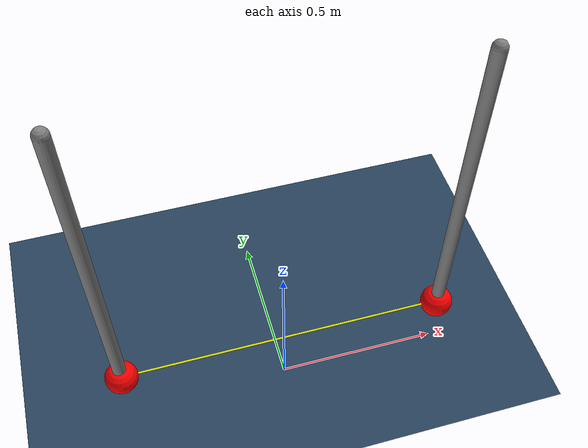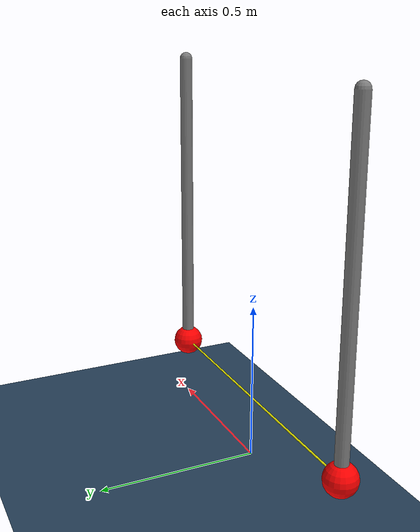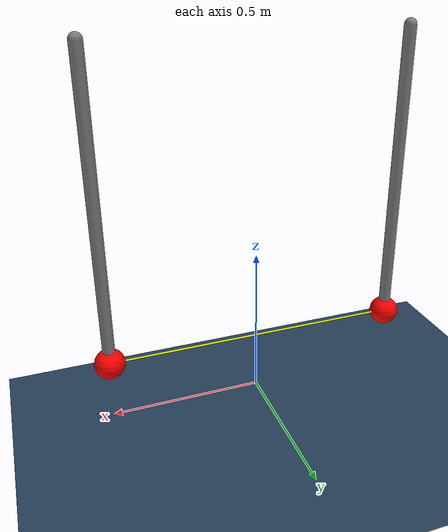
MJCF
<mujoco model="linked pendulums">

    <visual>
        <global offheight="720" offwidth="1280"/>
    </visual>

    <compiler angle="radian"/>
    <option timestep="0.01" gravity="0 0 -9.81"/>

    <asset>
        <texture type="skybox" builtin="gradient" rgb1="0.6 0.7 0.9" rgb2="0.3 0.3 0.4" width="512" height="3072"/>
        <texture type="2d" name="groundplane" builtin="checker" mark="edge" rgb1="0.2 0.3 0.4" rgb2="0.1 0.2 0.3" markrgb="0.8 0.8 0.8" width="300" height="300"/>
        <material name="groundplane" texture="groundplane" texuniform="true" texrepeat="5 5" reflectance="0.2"/>
    </asset>

    <worldbody>
        <light name="global_light" directional="true" diffuse="1 1 1" specular="0.3 0.3 0.3" castshadow="false"/>
        <light name="fill_light_0" pos="-5 0 10" dir="0 0 -1" directional="false" diffuse="1 1 1" specular="0.2 0.2 0.2"/>
        <light name="fill_light_1" pos="0 0 10" dir="0 0 -1" directional="false" diffuse="1 1 1" specular="0.2 0.2 0.2"/>
        <light name="fill_light_2" pos="5 0 10" dir="0 0 -1" directional="false" diffuse="1 1 1" specular="0.2 0.2 0.2"/>

        <geom name="floor" pos="0 0 0" size="0 0 0.05" type="plane" material="groundplane"/>

        <!-- Pendulum base -->
        <body name="pendulum:0" pos="-0.5 0 1.2">
            <!-- Hinge joint rotates around y-axis -->
            <joint name="hinge:0" type="hinge" axis="0 1 0" pos="0 0 0" limited="false" damping="0.1"/>

            <!-- Rod of the pendulum -->
            <geom name="rod:0" type="capsule" fromto="0 0 0 0 0 -1" size="0.02" mass="1" contype="1" conaffinity="2"/>

            <!-- Mass at the end -->
            <geom name="bob:0" type="sphere" pos="0 0 -1" size="0.05" rgba="1 0 0 1" mass="0" contype="1" conaffinity="2"/>

            <site name="site:0" pos="0 0 -1" size="0.01"/>
        </body>

        <!-- Pendulum base -->
        <body name="pendulum:1" pos="0.5 0 1.2">
            <!-- Hinge joint rotates around y-axis -->
            <joint name="hinge:1" type="hinge" axis="0 1 0" pos="0 0 0" limited="false" damping="0.1"/>

            <!-- Rod of the pendulum -->
            <geom name="rod:1" type="capsule" fromto="0 0 0 0 0 -1" size="0.02" mass="1" contype="1" conaffinity="2"/>

            <!-- Mass at the end -->
            <geom name="bob:1" type="sphere" pos="0 0 -1" size="0.05" rgba="1 0 0 1" mass="0" contype="1" conaffinity="2"/>

            <site name="site:1" pos="0 0 -1" size="0.01"/>
        </body>
    </worldbody>

    <tendon>
        <spatial name="spring_0_1" stiffness="3.0" damping="0.1" springlength="1.0" rgba="1 1 0 1">
            <site site="site:0"/>
            <site site="site:1"/>
        </spatial>
    </tendon>

    <actuator>
        <motor joint="hinge:0" ctrlrange="-1 1" gear="1"/>
        <motor joint="hinge:1" ctrlrange="-1 1" gear="1"/>
    </actuator>
</mujoco>
